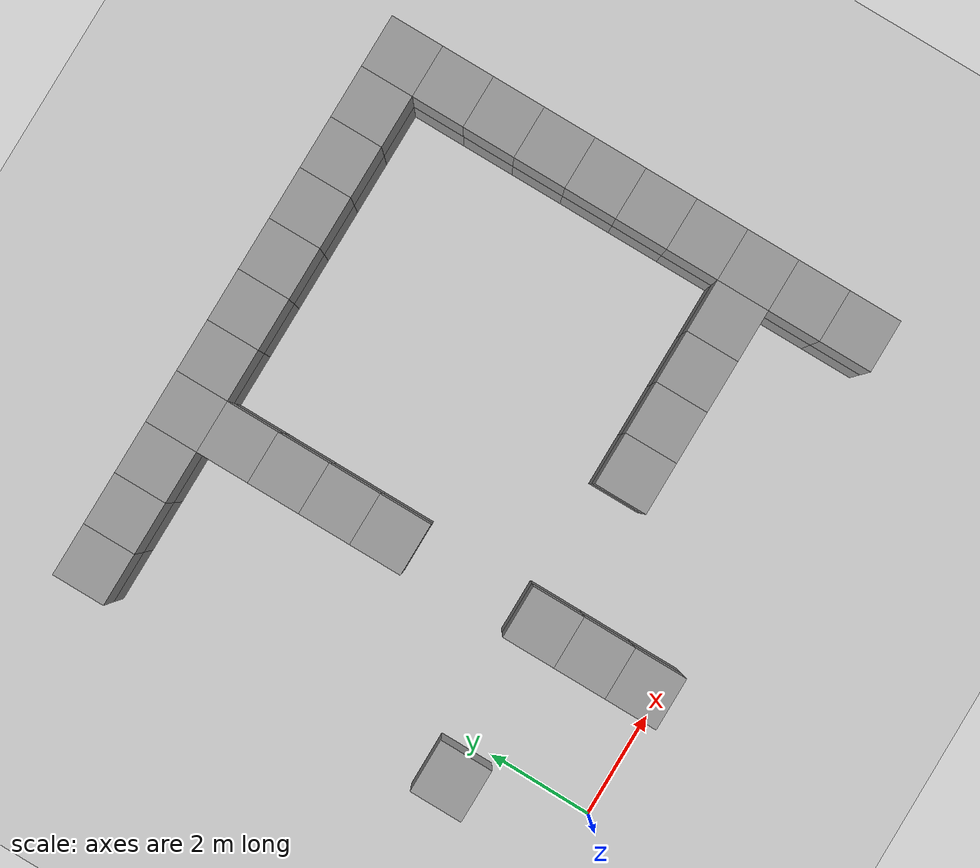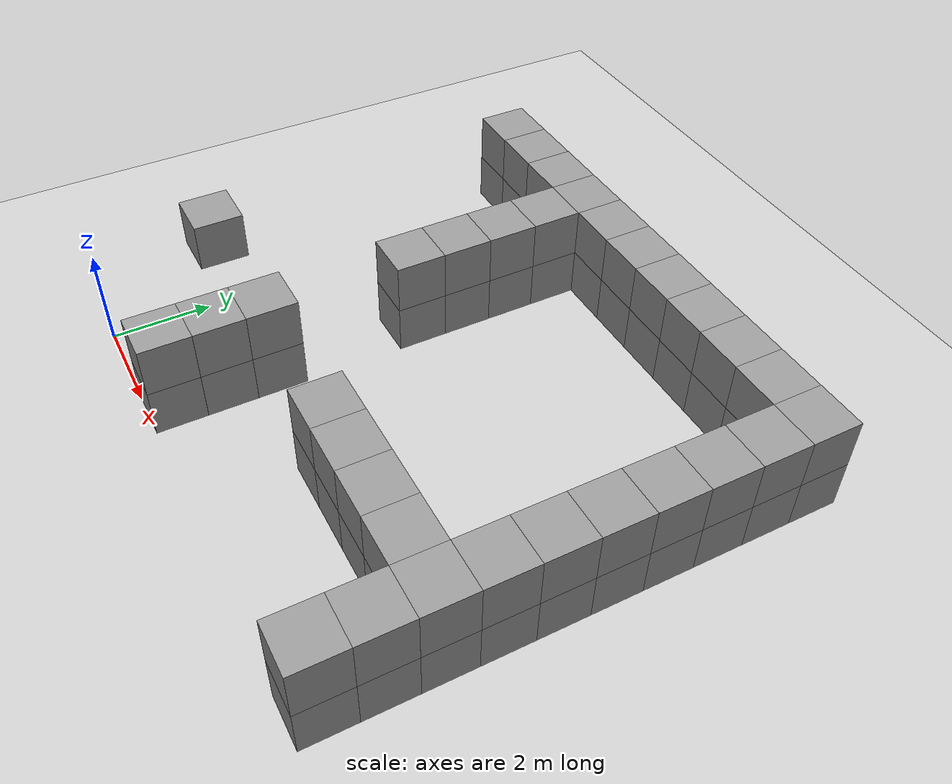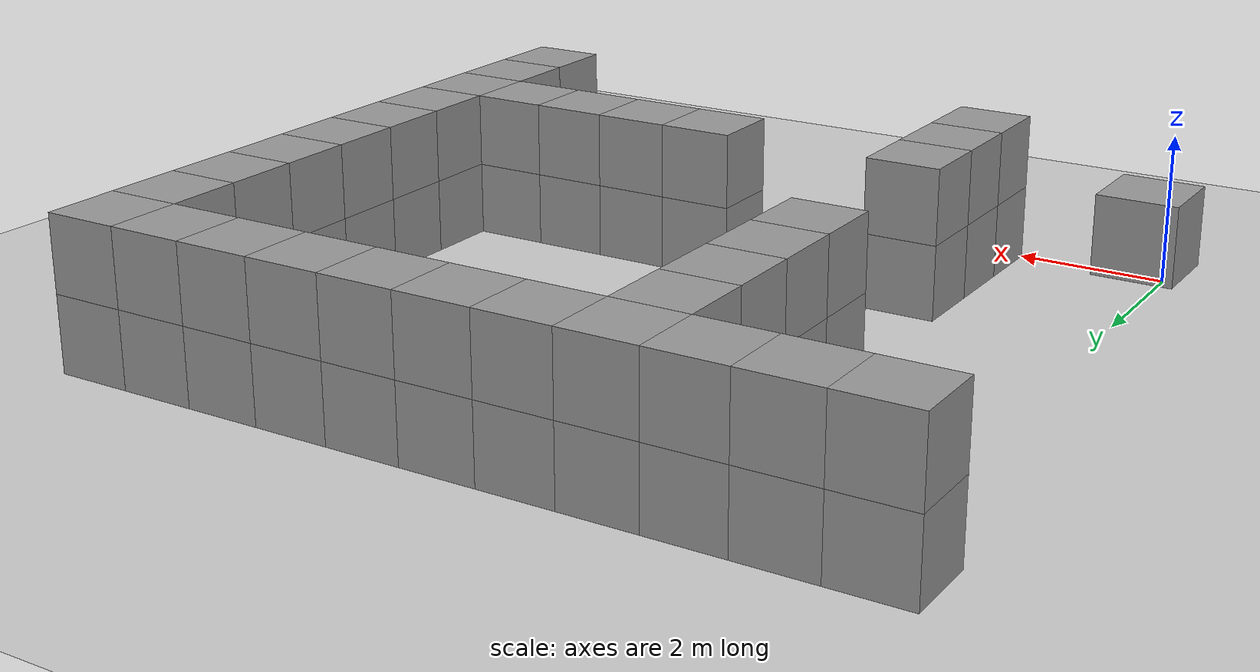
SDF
<sdf version="1.7">
 <world name="default">
  <model name="ground_plane">
   <static>1</static>
   <link name="link">
    <collision name="collision">
     <geometry><plane><normal>0 0 1</normal><size>100 100</size></plane></geometry>
     <surface>
      <contact><collide_bitmask>65535</collide_bitmask></contact>
      <friction><ode><mu>100</mu><mu2>50</mu2></ode></friction>
     </surface>
    </collision>
    <visual name="visual">
     <cast_shadows>0</cast_shadows>
     <geometry><plane><normal>0 0 1</normal><size>100 100</size></plane></geometry>
     <material>
      <script><uri>file://media/materials/scripts/gazebo.material</uri><name>Gazebo/Grey</name></script>
     </material>
    </visual>
   </link>
  </model>
  <model name="unit_box_clone_1">
   <pose>9.5 0.5 0.5 0 -0 0</pose>
   <link name="link">
    <inertial>
     <mass>1</mass>
     <inertia>
      <ixx>0.166667</ixx>
      <ixy>0</ixy>
      <ixz>0</ixz>
      <iyy>0.166667</iyy>
      <iyz>0</iyz>
      <izz>0.166667</izz>
     </inertia>
    </inertial>
    <collision name="collision"><geometry><box><size>1 1 1</size></box></geometry></collision>
    <visual name="visual">
     <geometry><box><size>1 1 1</size></box></geometry>
     <material>
      <script><name>Gazebo/Grey</name><uri>file://media/materials/scripts/gazebo.material</uri></script>
     </material>
    </visual>
   </link>
  </model>
  <model name="unit_box_clone_8">
   <pose>0.5 9.5 0.5 0 -0 0</pose>
   <link name="link">
    <inertial>
     <mass>1</mass>
     <inertia>
      <ixx>0.166667</ixx>
      <ixy>0</ixy>
      <ixz>0</ixz>
      <iyy>0.166667</iyy>
      <iyz>0</iyz>
      <izz>0.166667</izz>
     </inertia>
    </inertial>
    <collision name="collision"><geometry><box><size>1 1 1</size></box></geometry></collision>
    <visual name="visual">
     <geometry><box><size>1 1 1</size></box></geometry>
     <material>
      <script><name>Gazebo/Grey</name><uri>file://media/materials/scripts/gazebo.material</uri></script>
     </material>
    </visual>
   </link>
  </model>
  <model name="unit_box_clone_13">
   <pose>1.5 9.5 0.5 0 -0 0</pose>
   <link name="link">
    <inertial>
     <mass>1</mass>
     <inertia>
      <ixx>0.166667</ixx>
      <ixy>0</ixy>
      <ixz>0</ixz>
      <iyy>0.166667</iyy>
      <iyz>0</iyz>
      <izz>0.166667</izz>
     </inertia>
    </inertial>
    <collision name="collision"><geometry><box><size>1 1 1</size></box></geometry></collision>
    <visual name="visual">
     <geometry><box><size>1 1 1</size></box></geometry>
     <material>
      <script><name>Gazebo/Grey</name><uri>file://media/materials/scripts/gazebo.material</uri></script>
     </material>
    </visual>
   </link>
  </model>
  <model name="unit_box_clone_14">
   <pose>2.5 9.5 0.5 0 -0 0</pose>
   <link name="link">
    <inertial>
     <mass>1</mass>
     <inertia>
      <ixx>0.166667</ixx>
      <ixy>0</ixy>
      <ixz>0</ixz>
      <iyy>0.166667</iyy>
      <iyz>0</iyz>
      <izz>0.166667</izz>
     </inertia>
    </inertial>
    <collision name="collision"><geometry><box><size>1 1 1</size></box></geometry></collision>
    <visual name="visual">
     <geometry><box><size>1 1 1</size></box></geometry>
     <material>
      <script><name>Gazebo/Grey</name><uri>file://media/materials/scripts/gazebo.material</uri></script>
     </material>
    </visual>
   </link>
  </model>
  <model name="unit_box_clone_15">
   <pose>3.5 9.5 0.5 0 -0 0</pose>
   <link name="link">
    <inertial>
     <mass>1</mass>
     <inertia>
      <ixx>0.166667</ixx>
      <ixy>0</ixy>
      <ixz>0</ixz>
      <iyy>0.166667</iyy>
      <iyz>0</iyz>
      <izz>0.166667</izz>
     </inertia>
    </inertial>
    <collision name="collision"><geometry><box><size>1 1 1</size></box></geometry></collision>
    <visual name="visual">
     <geometry><box><size>1 1 1</size></box></geometry>
     <material>
      <script><name>Gazebo/Grey</name><uri>file://media/materials/scripts/gazebo.material</uri></script>
     </material>
    </visual>
   </link>
  </model>
  <model name="unit_box_clone_16">
   <pose>4.5 9.5 0.5 0 -0 0</pose>
   <link name="link">
    <inertial>
     <mass>1</mass>
     <inertia>
      <ixx>0.166667</ixx>
      <ixy>0</ixy>
      <ixz>0</ixz>
      <iyy>0.166667</iyy>
      <iyz>0</iyz>
      <izz>0.166667</izz>
     </inertia>
    </inertial>
    <collision name="collision"><geometry><box><size>1 1 1</size></box></geometry></collision>
    <visual name="visual">
     <geometry><box><size>1 1 1</size></box></geometry>
     <material>
      <script><name>Gazebo/Grey</name><uri>file://media/materials/scripts/gazebo.material</uri></script>
     </material>
    </visual>
   </link>
  </model>
  <model name="unit_box_clone_17">
   <pose>5.5 9.5 0.5 0 -0 0</pose>
   <link name="link">
    <inertial>
     <mass>1</mass>
     <inertia>
      <ixx>0.166667</ixx>
      <ixy>0</ixy>
      <ixz>0</ixz>
      <iyy>0.166667</iyy>
      <iyz>0</iyz>
      <izz>0.166667</izz>
     </inertia>
    </inertial>
    <collision name="collision"><geometry><box><size>1 1 1</size></box></geometry></collision>
    <visual name="visual">
     <geometry><box><size>1 1 1</size></box></geometry>
     <material>
      <script><name>Gazebo/Grey</name><uri>file://media/materials/scripts/gazebo.material</uri></script>
     </material>
    </visual>
   </link>
  </model>
  <model name="unit_box_clone_18">
   <pose>6.5 9.5 0.5 0 -0 0</pose>
   <link name="link">
    <inertial>
     <mass>1</mass>
     <inertia>
      <ixx>0.166667</ixx>
      <ixy>0</ixy>
      <ixz>0</ixz>
      <iyy>0.166667</iyy>
      <iyz>0</iyz>
      <izz>0.166667</izz>
     </inertia>
    </inertial>
    <collision name="collision"><geometry><box><size>1 1 1</size></box></geometry></collision>
    <visual name="visual">
     <geometry><box><size>1 1 1</size></box></geometry>
     <material>
      <script><name>Gazebo/Grey</name><uri>file://media/materials/scripts/gazebo.material</uri></script>
     </material>
    </visual>
   </link>
  </model>
  <model name="unit_box_clone_19">
   <pose>7.5 9.5 0.5 0 -0 0</pose>
   <link name="link">
    <inertial>
     <mass>1</mass>
     <inertia>
      <ixx>0.166667</ixx>
      <ixy>0</ixy>
      <ixz>0</ixz>
      <iyy>0.166667</iyy>
      <iyz>0</iyz>
      <izz>0.166667</izz>
     </inertia>
    </inertial>
    <collision name="collision"><geometry><box><size>1 1 1</size></box></geometry></collision>
    <visual name="visual">
     <geometry><box><size>1 1 1</size></box></geometry>
     <material>
      <script><name>Gazebo/Grey</name><uri>file://media/materials/scripts/gazebo.material</uri></script>
     </material>
    </visual>
   </link>
  </model>
  <model name="unit_box_clone_20">
   <pose>8.5 9.5 0.5 0 -0 0</pose>
   <link name="link">
    <inertial>
     <mass>1</mass>
     <inertia>
      <ixx>0.166667</ixx>
      <ixy>0</ixy>
      <ixz>0</ixz>
      <iyy>0.166667</iyy>
      <iyz>0</iyz>
      <izz>0.166667</izz>
     </inertia>
    </inertial>
    <collision name="collision"><geometry><box><size>1 1 1</size></box></geometry></collision>
    <visual name="visual">
     <geometry><box><size>1 1 1</size></box></geometry>
     <material>
      <script><name>Gazebo/Grey</name><uri>file://media/materials/scripts/gazebo.material</uri></script>
     </material>
    </visual>
   </link>
  </model>
  <model name="unit_box_clone_21">
   <pose>9.5 9.5 0.5 0 -0 0</pose>
   <link name="link">
    <inertial>
     <mass>1</mass>
     <inertia>
      <ixx>0.166667</ixx>
      <ixy>0</ixy>
      <ixz>0</ixz>
      <iyy>0.166667</iyy>
      <iyz>0</iyz>
      <izz>0.166667</izz>
     </inertia>
    </inertial>
    <collision name="collision"><geometry><box><size>1 1 1</size></box></geometry></collision>
    <visual name="visual">
     <geometry><box><size>1 1 1</size></box></geometry>
     <material>
      <script><name>Gazebo/Grey</name><uri>file://media/materials/scripts/gazebo.material</uri></script>
     </material>
    </visual>
   </link>
  </model>
  <model name="unit_box_clone_22">
   <pose>9.5 8.5 0.5 0 -0 0</pose>
   <link name="link">
    <inertial>
     <mass>1</mass>
     <inertia>
      <ixx>0.166667</ixx>
      <ixy>0</ixy>
      <ixz>0</ixz>
      <iyy>0.166667</iyy>
      <iyz>0</iyz>
      <izz>0.166667</izz>
     </inertia>
    </inertial>
    <collision name="collision"><geometry><box><size>1 1 1</size></box></geometry></collision>
    <visual name="visual">
     <geometry><box><size>1 1 1</size></box></geometry>
     <material>
      <script><name>Gazebo/Grey</name><uri>file://media/materials/scripts/gazebo.material</uri></script>
     </material>
    </visual>
   </link>
  </model>
  <model name="unit_box_clone_23">
   <pose>9.5 7.5 0.5 0 -0 0</pose>
   <link name="link">
    <inertial>
     <mass>1</mass>
     <inertia>
      <ixx>0.166667</ixx>
      <ixy>0</ixy>
      <ixz>0</ixz>
      <iyy>0.166667</iyy>
      <iyz>0</iyz>
      <izz>0.166667</izz>
     </inertia>
    </inertial>
    <collision name="collision"><geometry><box><size>1 1 1</size></box></geometry></collision>
    <visual name="visual">
     <geometry><box><size>1 1 1</size></box></geometry>
     <material>
      <script><name>Gazebo/Grey</name><uri>file://media/materials/scripts/gazebo.material</uri></script>
     </material>
    </visual>
   </link>
  </model>
  <model name="unit_box_clone_24">
   <pose>9.5 6.5 0.5 0 -0 0</pose>
   <link name="link">
    <inertial>
     <mass>1</mass>
     <inertia>
      <ixx>0.166667</ixx>
      <ixy>0</ixy>
      <ixz>0</ixz>
      <iyy>0.166667</iyy>
      <iyz>0</iyz>
      <izz>0.166667</izz>
     </inertia>
    </inertial>
    <collision name="collision"><geometry><box><size>1 1 1</size></box></geometry></collision>
    <visual name="visual">
     <geometry><box><size>1 1 1</size></box></geometry>
     <material>
      <script><name>Gazebo/Grey</name><uri>file://media/materials/scripts/gazebo.material</uri></script>
     </material>
    </visual>
   </link>
  </model>
  <model name="unit_box_clone_25">
   <pose>9.5 5.5 0.5 0 -0 0</pose>
   <link name="link">
    <inertial>
     <mass>1</mass>
     <inertia>
      <ixx>0.166667</ixx>
      <ixy>0</ixy>
      <ixz>0</ixz>
      <iyy>0.166667</iyy>
      <iyz>0</iyz>
      <izz>0.166667</izz>
     </inertia>
    </inertial>
    <collision name="collision"><geometry><box><size>1 1 1</size></box></geometry></collision>
    <visual name="visual">
     <geometry><box><size>1 1 1</size></box></geometry>
     <material>
      <script><name>Gazebo/Grey</name><uri>file://media/materials/scripts/gazebo.material</uri></script>
     </material>
    </visual>
   </link>
  </model>
  <model name="unit_box_clone_26">
   <pose>9.5 4.5 0.5 0 -0 0</pose>
   <link name="link">
    <inertial>
     <mass>1</mass>
     <inertia>
      <ixx>0.166667</ixx>
      <ixy>0</ixy>
      <ixz>0</ixz>
      <iyy>0.166667</iyy>
      <iyz>0</iyz>
      <izz>0.166667</izz>
     </inertia>
    </inertial>
    <collision name="collision"><geometry><box><size>1 1 1</size></box></geometry></collision>
    <visual name="visual">
     <geometry><box><size>1 1 1</size></box></geometry>
     <material>
      <script><name>Gazebo/Grey</name><uri>file://media/materials/scripts/gazebo.material</uri></script>
     </material>
    </visual>
   </link>
  </model>
  <model name="unit_box_clone_27">
   <pose>9.5 3.5 0.5 0 -0 0</pose>
   <link name="link">
    <inertial>
     <mass>1</mass>
     <inertia>
      <ixx>0.166667</ixx>
      <ixy>0</ixy>
      <ixz>0</ixz>
      <iyy>0.166667</iyy>
      <iyz>0</iyz>
      <izz>0.166667</izz>
     </inertia>
    </inertial>
    <collision name="collision"><geometry><box><size>1 1 1</size></box></geometry></collision>
    <visual name="visual">
     <geometry><box><size>1 1 1</size></box></geometry>
     <material>
      <script><name>Gazebo/Grey</name><uri>file://media/materials/scripts/gazebo.material</uri></script>
     </material>
    </visual>
   </link>
  </model>
  <model name="unit_box_clone_28">
   <pose>9.5 2.5 0.5 0 -0 0</pose>
   <link name="link">
    <inertial>
     <mass>1</mass>
     <inertia>
      <ixx>0.166667</ixx>
      <ixy>0</ixy>
      <ixz>0</ixz>
      <iyy>0.166667</iyy>
      <iyz>0</iyz>
      <izz>0.166667</izz>
     </inertia>
    </inertial>
    <collision name="collision"><geometry><box><size>1 1 1</size></box></geometry></collision>
    <visual name="visual">
     <geometry><box><size>1 1 1</size></box></geometry>
     <material>
      <script><name>Gazebo/Grey</name><uri>file://media/materials/scripts/gazebo.material</uri></script>
     </material>
    </visual>
   </link>
  </model>
  <model name="unit_box_clone_29">
   <pose>9.5 1.5 0.5 0 -0 0</pose>
   <link name="link">
    <inertial>
     <mass>1</mass>
     <inertia>
      <ixx>0.166667</ixx>
      <ixy>0</ixy>
      <ixz>0</ixz>
      <iyy>0.166667</iyy>
      <iyz>0</iyz>
      <izz>0.166667</izz>
     </inertia>
    </inertial>
    <collision name="collision"><geometry><box><size>1 1 1</size></box></geometry></collision>
    <visual name="visual">
     <geometry><box><size>1 1 1</size></box></geometry>
     <material>
      <script><name>Gazebo/Grey</name><uri>file://media/materials/scripts/gazebo.material</uri></script>
     </material>
    </visual>
   </link>
  </model>
  <model name="unit_box_clone_0_clone_clone_3">
   <pose>9.5 0.5 1.5 0 -0 0</pose>
   <link name="link">
    <inertial>
     <mass>1</mass>
     <inertia>
      <ixx>0.166667</ixx>
      <ixy>0</ixy>
      <ixz>0</ixz>
      <iyy>0.166667</iyy>
      <iyz>0</iyz>
      <izz>0.166667</izz>
     </inertia>
    </inertial>
    <collision name="collision"><geometry><box><size>1 1 1</size></box></geometry></collision>
    <visual name="visual">
     <geometry><box><size>1 1 1</size></box></geometry>
     <material>
      <script><name>Gazebo/Grey</name><uri>file://media/materials/scripts/gazebo.material</uri></script>
     </material>
    </visual>
   </link>
  </model>
  <model name="unit_box_clone_0_clone_clone_4">
   <pose>9.5 1.5 1.5 0 -0 0</pose>
   <link name="link">
    <inertial>
     <mass>1</mass>
     <inertia>
      <ixx>0.166667</ixx>
      <ixy>0</ixy>
      <ixz>0</ixz>
      <iyy>0.166667</iyy>
      <iyz>0</iyz>
      <izz>0.166667</izz>
     </inertia>
    </inertial>
    <collision name="collision"><geometry><box><size>1 1 1</size></box></geometry></collision>
    <visual name="visual">
     <geometry><box><size>1 1 1</size></box></geometry>
     <material>
      <script><name>Gazebo/Grey</name><uri>file://media/materials/scripts/gazebo.material</uri></script>
     </material>
    </visual>
   </link>
  </model>
  <model name="unit_box_clone_0_clone_clone_5">
   <pose>9.5 2.5 1.5 0 -0 0</pose>
   <link name="link">
    <inertial>
     <mass>1</mass>
     <inertia>
      <ixx>0.166667</ixx>
      <ixy>0</ixy>
      <ixz>0</ixz>
      <iyy>0.166667</iyy>
      <iyz>0</iyz>
      <izz>0.166667</izz>
     </inertia>
    </inertial>
    <collision name="collision"><geometry><box><size>1 1 1</size></box></geometry></collision>
    <visual name="visual">
     <geometry><box><size>1 1 1</size></box></geometry>
     <material>
      <script><name>Gazebo/Grey</name><uri>file://media/materials/scripts/gazebo.material</uri></script>
     </material>
    </visual>
   </link>
  </model>
  <model name="unit_box_clone_0_clone_clone_6">
   <pose>9.5 3.5 1.5 0 -0 0</pose>
   <link name="link">
    <inertial>
     <mass>1</mass>
     <inertia>
      <ixx>0.166667</ixx>
      <ixy>0</ixy>
      <ixz>0</ixz>
      <iyy>0.166667</iyy>
      <iyz>0</iyz>
      <izz>0.166667</izz>
     </inertia>
    </inertial>
    <collision name="collision"><geometry><box><size>1 1 1</size></box></geometry></collision>
    <visual name="visual">
     <geometry><box><size>1 1 1</size></box></geometry>
     <material>
      <script><name>Gazebo/Grey</name><uri>file://media/materials/scripts/gazebo.material</uri></script>
     </material>
    </visual>
   </link>
  </model>
  <model name="unit_box_clone_0_clone_clone_7">
   <pose>9.5 4.5 1.5 0 -0 0</pose>
   <link name="link">
    <inertial>
     <mass>1</mass>
     <inertia>
      <ixx>0.166667</ixx>
      <ixy>0</ixy>
      <ixz>0</ixz>
      <iyy>0.166667</iyy>
      <iyz>0</iyz>
      <izz>0.166667</izz>
     </inertia>
    </inertial>
    <collision name="collision"><geometry><box><size>1 1 1</size></box></geometry></collision>
    <visual name="visual">
     <geometry><box><size>1 1 1</size></box></geometry>
     <material>
      <script><name>Gazebo/Grey</name><uri>file://media/materials/scripts/gazebo.material</uri></script>
     </material>
    </visual>
   </link>
  </model>
  <model name="unit_box_clone_0_clone_clone_8">
   <pose>9.5 5.5 1.5 0 -0 0</pose>
   <link name="link">
    <inertial>
     <mass>1</mass>
     <inertia>
      <ixx>0.166667</ixx>
      <ixy>0</ixy>
      <ixz>0</ixz>
      <iyy>0.166667</iyy>
      <iyz>0</iyz>
      <izz>0.166667</izz>
     </inertia>
    </inertial>
    <collision name="collision"><geometry><box><size>1 1 1</size></box></geometry></collision>
    <visual name="visual">
     <geometry><box><size>1 1 1</size></box></geometry>
     <material>
      <script><name>Gazebo/Grey</name><uri>file://media/materials/scripts/gazebo.material</uri></script>
     </material>
    </visual>
   </link>
  </model>
  <model name="unit_box_clone_0_clone_clone_9">
   <pose>9.5 6.5 1.5 0 -0 0</pose>
   <link name="link">
    <inertial>
     <mass>1</mass>
     <inertia>
      <ixx>0.166667</ixx>
      <ixy>0</ixy>
      <ixz>0</ixz>
      <iyy>0.166667</iyy>
      <iyz>0</iyz>
      <izz>0.166667</izz>
     </inertia>
    </inertial>
    <collision name="collision"><geometry><box><size>1 1 1</size></box></geometry></collision>
    <visual name="visual">
     <geometry><box><size>1 1 1</size></box></geometry>
     <material>
      <script><name>Gazebo/Grey</name><uri>file://media/materials/scripts/gazebo.material</uri></script>
     </material>
    </visual>
   </link>
  </model>
  <model name="unit_box_clone_0_clone_clone_10">
   <pose>9.5 7.5 1.5 0 -0 0</pose>
   <link name="link">
    <inertial>
     <mass>1</mass>
     <inertia>
      <ixx>0.166667</ixx>
      <ixy>0</ixy>
      <ixz>0</ixz>
      <iyy>0.166667</iyy>
      <iyz>0</iyz>
      <izz>0.166667</izz>
     </inertia>
    </inertial>
    <collision name="collision"><geometry><box><size>1 1 1</size></box></geometry></collision>
    <visual name="visual">
     <geometry><box><size>1 1 1</size></box></geometry>
     <material>
      <script><name>Gazebo/Grey</name><uri>file://media/materials/scripts/gazebo.material</uri></script>
     </material>
    </visual>
   </link>
  </model>
  <model name="unit_box_clone_0_clone_clone_11">
   <pose>9.5 8.5 1.5 0 -0 0</pose>
   <link name="link">
    <inertial>
     <mass>1</mass>
     <inertia>
      <ixx>0.166667</ixx>
      <ixy>0</ixy>
      <ixz>0</ixz>
      <iyy>0.166667</iyy>
      <iyz>0</iyz>
      <izz>0.166667</izz>
     </inertia>
    </inertial>
    <collision name="collision"><geometry><box><size>1 1 1</size></box></geometry></collision>
    <visual name="visual">
     <geometry><box><size>1 1 1</size></box></geometry>
     <material>
      <script><name>Gazebo/Grey</name><uri>file://media/materials/scripts/gazebo.material</uri></script>
     </material>
    </visual>
   </link>
  </model>
  <model name="unit_box_clone_0_clone_clone_12">
   <pose>9.5 9.5 1.5 0 -0 0</pose>
   <link name="link">
    <inertial>
     <mass>1</mass>
     <inertia>
      <ixx>0.166667</ixx>
      <ixy>0</ixy>
      <ixz>0</ixz>
      <iyy>0.166667</iyy>
      <iyz>0</iyz>
      <izz>0.166667</izz>
     </inertia>
    </inertial>
    <collision name="collision"><geometry><box><size>1 1 1</size></box></geometry></collision>
    <visual name="visual">
     <geometry><box><size>1 1 1</size></box></geometry>
     <material>
      <script><name>Gazebo/Grey</name><uri>file://media/materials/scripts/gazebo.material</uri></script>
     </material>
    </visual>
   </link>
  </model>
  <model name="unit_box_clone_0_clone_clone_13">
   <pose>8.5 9.5 1.5 0 -0 0</pose>
   <link name="link">
    <inertial>
     <mass>1</mass>
     <inertia>
      <ixx>0.166667</ixx>
      <ixy>0</ixy>
      <ixz>0</ixz>
      <iyy>0.166667</iyy>
      <iyz>0</iyz>
      <izz>0.166667</izz>
     </inertia>
    </inertial>
    <collision name="collision"><geometry><box><size>1 1 1</size></box></geometry></collision>
    <visual name="visual">
     <geometry><box><size>1 1 1</size></box></geometry>
     <material>
      <script><name>Gazebo/Grey</name><uri>file://media/materials/scripts/gazebo.material</uri></script>
     </material>
    </visual>
   </link>
  </model>
  <model name="unit_box_clone_0_clone_clone_14">
   <pose>7.5 9.5 1.5 0 -0 0</pose>
   <link name="link">
    <inertial>
     <mass>1</mass>
     <inertia>
      <ixx>0.166667</ixx>
      <ixy>0</ixy>
      <ixz>0</ixz>
      <iyy>0.166667</iyy>
      <iyz>0</iyz>
      <izz>0.166667</izz>
     </inertia>
    </inertial>
    <collision name="collision"><geometry><box><size>1 1 1</size></box></geometry></collision>
    <visual name="visual">
     <geometry><box><size>1 1 1</size></box></geometry>
     <material>
      <script><name>Gazebo/Grey</name><uri>file://media/materials/scripts/gazebo.material</uri></script>
     </material>
    </visual>
   </link>
  </model>
  <model name="unit_box_clone_0_clone_clone_15">
   <pose>6.5 9.5 1.5 0 -0 0</pose>
   <link name="link">
    <inertial>
     <mass>1</mass>
     <inertia>
      <ixx>0.166667</ixx>
      <ixy>0</ixy>
      <ixz>0</ixz>
      <iyy>0.166667</iyy>
      <iyz>0</iyz>
      <izz>0.166667</izz>
     </inertia>
    </inertial>
    <collision name="collision"><geometry><box><size>1 1 1</size></box></geometry></collision>
    <visual name="visual">
     <geometry><box><size>1 1 1</size></box></geometry>
     <material>
      <script><name>Gazebo/Grey</name><uri>file://media/materials/scripts/gazebo.material</uri></script>
     </material>
    </visual>
   </link>
  </model>
  <model name="unit_box_clone_0_clone_clone_16">
   <pose>5.5 9.5 1.5 0 -0 0</pose>
   <link name="link">
    <inertial>
     <mass>1</mass>
     <inertia>
      <ixx>0.166667</ixx>
      <ixy>0</ixy>
      <ixz>0</ixz>
      <iyy>0.166667</iyy>
      <iyz>0</iyz>
      <izz>0.166667</izz>
     </inertia>
    </inertial>
    <collision name="collision"><geometry><box><size>1 1 1</size></box></geometry></collision>
    <visual name="visual">
     <geometry><box><size>1 1 1</size></box></geometry>
     <material>
      <script><name>Gazebo/Grey</name><uri>file://media/materials/scripts/gazebo.material</uri></script>
     </material>
    </visual>
   </link>
  </model>
  <model name="unit_box_clone_0_clone_clone_17">
   <pose>4.5 9.5 1.5 0 -0 0</pose>
   <link name="link">
    <inertial>
     <mass>1</mass>
     <inertia>
      <ixx>0.166667</ixx>
      <ixy>0</ixy>
      <ixz>0</ixz>
      <iyy>0.166667</iyy>
      <iyz>0</iyz>
      <izz>0.166667</izz>
     </inertia>
    </inertial>
    <collision name="collision"><geometry><box><size>1 1 1</size></box></geometry></collision>
    <visual name="visual">
     <geometry><box><size>1 1 1</size></box></geometry>
     <material>
      <script><name>Gazebo/Grey</name><uri>file://media/materials/scripts/gazebo.material</uri></script>
     </material>
    </visual>
   </link>
  </model>
  <model name="unit_box_clone_0_clone_clone_18">
   <pose>3.5 9.5 1.5 0 -0 0</pose>
   <link name="link">
    <inertial>
     <mass>1</mass>
     <inertia>
      <ixx>0.166667</ixx>
      <ixy>0</ixy>
      <ixz>0</ixz>
      <iyy>0.166667</iyy>
      <iyz>0</iyz>
      <izz>0.166667</izz>
     </inertia>
    </inertial>
    <collision name="collision"><geometry><box><size>1 1 1</size></box></geometry></collision>
    <visual name="visual">
     <geometry><box><size>1 1 1</size></box></geometry>
     <material>
      <script><name>Gazebo/Grey</name><uri>file://media/materials/scripts/gazebo.material</uri></script>
     </material>
    </visual>
   </link>
  </model>
  <model name="unit_box_clone_0_clone_clone_19">
   <pose>2.5 9.5 1.5 0 -0 0</pose>
   <link name="link">
    <inertial>
     <mass>1</mass>
     <inertia>
      <ixx>0.166667</ixx>
      <ixy>0</ixy>
      <ixz>0</ixz>
      <iyy>0.166667</iyy>
      <iyz>0</iyz>
      <izz>0.166667</izz>
     </inertia>
    </inertial>
    <collision name="collision"><geometry><box><size>1 1 1</size></box></geometry></collision>
    <visual name="visual">
     <geometry><box><size>1 1 1</size></box></geometry>
     <material>
      <script><name>Gazebo/Grey</name><uri>file://media/materials/scripts/gazebo.material</uri></script>
     </material>
    </visual>
   </link>
  </model>
  <model name="unit_box_clone_0_clone_clone_20">
   <pose>1.5 9.5 1.5 0 -0 0</pose>
   <link name="link">
    <inertial>
     <mass>1</mass>
     <inertia>
      <ixx>0.166667</ixx>
      <ixy>0</ixy>
      <ixz>0</ixz>
      <iyy>0.166667</iyy>
      <iyz>0</iyz>
      <izz>0.166667</izz>
     </inertia>
    </inertial>
    <collision name="collision"><geometry><box><size>1 1 1</size></box></geometry></collision>
    <visual name="visual">
     <geometry><box><size>1 1 1</size></box></geometry>
     <material>
      <script><name>Gazebo/Grey</name><uri>file://media/materials/scripts/gazebo.material</uri></script>
     </material>
    </visual>
   </link>
  </model>
  <model name="unit_box_clone_0_clone_clone_21">
   <pose>0.5 9.5 1.5 0 -0 0</pose>
   <link name="link">
    <inertial>
     <mass>1</mass>
     <inertia>
      <ixx>0.166667</ixx>
      <ixy>0</ixy>
      <ixz>0</ixz>
      <iyy>0.166667</iyy>
      <iyz>0</iyz>
      <izz>0.166667</izz>
     </inertia>
    </inertial>
    <collision name="collision"><geometry><box><size>1 1 1</size></box></geometry></collision>
    <visual name="visual">
     <geometry><box><size>1 1 1</size></box></geometry>
     <material>
      <script><name>Gazebo/Grey</name><uri>file://media/materials/scripts/gazebo.material</uri></script>
     </material>
    </visual>
   </link>
  </model>
  <model name="unit_box_clone_7_clone_4">
   <pose>-0.5 9.5 0.5 0 -0 0</pose>
   <link name="link">
    <inertial>
     <mass>1</mass>
     <inertia>
      <ixx>0.166667</ixx>
      <ixy>0</ixy>
      <ixz>0</ixz>
      <iyy>0.166667</iyy>
      <iyz>0</iyz>
      <izz>0.166667</izz>
     </inertia>
    </inertial>
    <collision name="collision"><geometry><box><size>1 1 1</size></box></geometry></collision>
    <visual name="visual">
     <geometry><box><size>1 1 1</size></box></geometry>
     <material>
      <script><name>Gazebo/Grey</name><uri>file://media/materials/scripts/gazebo.material</uri></script>
     </material>
    </visual>
   </link>
  </model>
  <model name="unit_box_clone_0_clone_clone_26_clone_23">
   <pose>-0.5 9.5 1.5 0 -0 0</pose>
   <link name="link">
    <inertial>
     <mass>1</mass>
     <inertia>
      <ixx>0.166667</ixx>
      <ixy>0</ixy>
      <ixz>0</ixz>
      <iyy>0.166667</iyy>
      <iyz>0</iyz>
      <izz>0.166667</izz>
     </inertia>
    </inertial>
    <collision name="collision"><geometry><box><size>1 1 1</size></box></geometry></collision>
    <visual name="visual">
     <geometry><box><size>1 1 1</size></box></geometry>
     <material>
      <script><name>Gazebo/Grey</name><uri>file://media/materials/scripts/gazebo.material</uri></script>
     </material>
    </visual>
   </link>
  </model>
  <model name="unit_box_clone_27_clone">
   <pose>8.5 2.5 0.5 0 -0 0</pose>
   <link name="link">
    <inertial>
     <mass>1</mass>
     <inertia>
      <ixx>0.166667</ixx>
      <ixy>0</ixy>
      <ixz>0</ixz>
      <iyy>0.166667</iyy>
      <iyz>0</iyz>
      <izz>0.166667</izz>
     </inertia>
    </inertial>
    <collision name="collision"><geometry><box><size>1 1 1</size></box></geometry></collision>
    <visual name="visual">
     <geometry><box><size>1 1 1</size></box></geometry>
     <material>
      <script><name>Gazebo/Grey</name><uri>file://media/materials/scripts/gazebo.material</uri></script>
     </material>
    </visual>
   </link>
  </model>
  <model name="unit_box_clone_27_clone_clone">
   <pose>7.5 2.5 0.5 0 -0 0</pose>
   <link name="link">
    <inertial>
     <mass>1</mass>
     <inertia>
      <ixx>0.166667</ixx>
      <ixy>0</ixy>
      <ixz>0</ixz>
      <iyy>0.166667</iyy>
      <iyz>0</iyz>
      <izz>0.166667</izz>
     </inertia>
    </inertial>
    <collision name="collision"><geometry><box><size>1 1 1</size></box></geometry></collision>
    <visual name="visual">
     <geometry><box><size>1 1 1</size></box></geometry>
     <material>
      <script><name>Gazebo/Grey</name><uri>file://media/materials/scripts/gazebo.material</uri></script>
     </material>
    </visual>
   </link>
  </model>
  <model name="unit_box_clone_27_clone_clone_clone">
   <pose>6.5 2.5 0.5 0 -0 0</pose>
   <link name="link">
    <inertial>
     <mass>1</mass>
     <inertia>
      <ixx>0.166667</ixx>
      <ixy>0</ixy>
      <ixz>0</ixz>
      <iyy>0.166667</iyy>
      <iyz>0</iyz>
      <izz>0.166667</izz>
     </inertia>
    </inertial>
    <collision name="collision"><geometry><box><size>1 1 1</size></box></geometry></collision>
    <visual name="visual">
     <geometry><box><size>1 1 1</size></box></geometry>
     <material>
      <script><name>Gazebo/Grey</name><uri>file://media/materials/scripts/gazebo.material</uri></script>
     </material>
    </visual>
   </link>
  </model>
  <model name="unit_box_clone_27_clone_clone_clone_clone">
   <pose>5.5 2.5 0.5 0 -0 0</pose>
   <link name="link">
    <inertial>
     <mass>1</mass>
     <inertia>
      <ixx>0.166667</ixx>
      <ixy>0</ixy>
      <ixz>0</ixz>
      <iyy>0.166667</iyy>
      <iyz>0</iyz>
      <izz>0.166667</izz>
     </inertia>
    </inertial>
    <collision name="collision"><geometry><box><size>1 1 1</size></box></geometry></collision>
    <visual name="visual">
     <geometry><box><size>1 1 1</size></box></geometry>
     <material>
      <script><name>Gazebo/Grey</name><uri>file://media/materials/scripts/gazebo.material</uri></script>
     </material>
    </visual>
   </link>
  </model>
  <model name="unit_box_clone_27_clone_clone_clone_clone_clone">
   <pose>2.5 8.5 0.5 0 -0 0</pose>
   <link name="link">
    <inertial>
     <mass>1</mass>
     <inertia>
      <ixx>0.166667</ixx>
      <ixy>0</ixy>
      <ixz>0</ixz>
      <iyy>0.166667</iyy>
      <iyz>0</iyz>
      <izz>0.166667</izz>
     </inertia>
    </inertial>
    <collision name="collision"><geometry><box><size>1 1 1</size></box></geometry></collision>
    <visual name="visual">
     <geometry><box><size>1 1 1</size></box></geometry>
     <material>
      <script><name>Gazebo/Grey</name><uri>file://media/materials/scripts/gazebo.material</uri></script>
     </material>
    </visual>
   </link>
  </model>
  <model name="unit_box_clone_27_clone_clone_clone_clone_clone_0">
   <pose>2.5 7.5 0.5 0 -0 0</pose>
   <link name="link">
    <inertial>
     <mass>1</mass>
     <inertia>
      <ixx>0.166667</ixx>
      <ixy>0</ixy>
      <ixz>0</ixz>
      <iyy>0.166667</iyy>
      <iyz>0</iyz>
      <izz>0.166667</izz>
     </inertia>
    </inertial>
    <collision name="collision"><geometry><box><size>1 1 1</size></box></geometry></collision>
    <visual name="visual">
     <geometry><box><size>1 1 1</size></box></geometry>
     <material>
      <script><name>Gazebo/Grey</name><uri>file://media/materials/scripts/gazebo.material</uri></script>
     </material>
    </visual>
   </link>
  </model>
  <model name="unit_box_clone_27_clone_clone_clone_clone_clone_1">
   <pose>2.5 6.5 0.5 0 -0 0</pose>
   <link name="link">
    <inertial>
     <mass>1</mass>
     <inertia>
      <ixx>0.166667</ixx>
      <ixy>0</ixy>
      <ixz>0</ixz>
      <iyy>0.166667</iyy>
      <iyz>0</iyz>
      <izz>0.166667</izz>
     </inertia>
    </inertial>
    <collision name="collision"><geometry><box><size>1 1 1</size></box></geometry></collision>
    <visual name="visual">
     <geometry><box><size>1 1 1</size></box></geometry>
     <material>
      <script><name>Gazebo/Grey</name><uri>file://media/materials/scripts/gazebo.material</uri></script>
     </material>
    </visual>
   </link>
  </model>
  <model name="unit_box_clone_27_clone_clone_clone_clone_clone_2">
   <pose>2.5 5.5 0.5 0 -0 0</pose>
   <link name="link">
    <inertial>
     <mass>1</mass>
     <inertia>
      <ixx>0.166667</ixx>
      <ixy>0</ixy>
      <ixz>0</ixz>
      <iyy>0.166667</iyy>
      <iyz>0</iyz>
      <izz>0.166667</izz>
     </inertia>
    </inertial>
    <collision name="collision"><geometry><box><size>1 1 1</size></box></geometry></collision>
    <visual name="visual">
     <geometry><box><size>1 1 1</size></box></geometry>
     <material>
      <script><name>Gazebo/Grey</name><uri>file://media/materials/scripts/gazebo.material</uri></script>
     </material>
    </visual>
   </link>
  </model>
  <model name="unit_box_clone_0_clone_clone_26_clone_2_clone_1_clone_0_clone_2">
   <pose>-0.5 2.5 1.5 0 -0 0</pose>
   <link name="link">
    <inertial>
     <mass>1</mass>
     <inertia>
      <ixx>0.166667</ixx>
      <ixy>0</ixy>
      <ixz>0</ixz>
      <iyy>0.166667</iyy>
      <iyz>0</iyz>
      <izz>0.166667</izz>
     </inertia>
    </inertial>
    <collision name="collision"><geometry><box><size>1 1 1</size></box></geometry></collision>
    <visual name="visual">
     <geometry><box><size>1 1 1</size></box></geometry>
     <material>
      <script><name>Gazebo/Grey</name><uri>file://media/materials/scripts/gazebo.material</uri></script>
     </material>
    </visual>
   </link>
  </model>
  <model name="unit_box_clone_0_clone_clone_26_clone_2_clone_1_clone_0_clone_2_clone">
   <pose>5.5 2.5 1.5 0 -0 0</pose>
   <link name="link">
    <inertial>
     <mass>1</mass>
     <inertia>
      <ixx>0.166667</ixx>
      <ixy>0</ixy>
      <ixz>0</ixz>
      <iyy>0.166667</iyy>
      <iyz>0</iyz>
      <izz>0.166667</izz>
     </inertia>
    </inertial>
    <collision name="collision"><geometry><box><size>1 1 1</size></box></geometry></collision>
    <visual name="visual">
     <geometry><box><size>1 1 1</size></box></geometry>
     <material>
      <script><name>Gazebo/Grey</name><uri>file://media/materials/scripts/gazebo.material</uri></script>
     </material>
    </visual>
   </link>
  </model>
  <model name="unit_box_clone_0_clone_clone_26_clone_2_clone_1_clone_0_clone_2_clone_0">
   <pose>6.5 2.5 1.5 0 -0 0</pose>
   <link name="link">
    <inertial>
     <mass>1</mass>
     <inertia>
      <ixx>0.166667</ixx>
      <ixy>0</ixy>
      <ixz>0</ixz>
      <iyy>0.166667</iyy>
      <iyz>0</iyz>
      <izz>0.166667</izz>
     </inertia>
    </inertial>
    <collision name="collision"><geometry><box><size>1 1 1</size></box></geometry></collision>
    <visual name="visual">
     <geometry><box><size>1 1 1</size></box></geometry>
     <material>
      <script><name>Gazebo/Grey</name><uri>file://media/materials/scripts/gazebo.material</uri></script>
     </material>
    </visual>
   </link>
  </model>
  <model name="unit_box_clone_0_clone_clone_26_clone_2_clone_1_clone_0_clone_2_clone_1">
   <pose>7.5 2.5 1.5 0 -0 0</pose>
   <link name="link">
    <inertial>
     <mass>1</mass>
     <inertia>
      <ixx>0.166667</ixx>
      <ixy>0</ixy>
      <ixz>0</ixz>
      <iyy>0.166667</iyy>
      <iyz>0</iyz>
      <izz>0.166667</izz>
     </inertia>
    </inertial>
    <collision name="collision"><geometry><box><size>1 1 1</size></box></geometry></collision>
    <visual name="visual">
     <geometry><box><size>1 1 1</size></box></geometry>
     <material>
      <script><name>Gazebo/Grey</name><uri>file://media/materials/scripts/gazebo.material</uri></script>
     </material>
    </visual>
   </link>
  </model>
  <model name="unit_box_clone_0_clone_clone_26_clone_2_clone_1_clone_0_clone_2_clone_2">
   <pose>8.5 2.5 1.5 0 -0 0</pose>
   <link name="link">
    <inertial>
     <mass>1</mass>
     <inertia>
      <ixx>0.166667</ixx>
      <ixy>0</ixy>
      <ixz>0</ixz>
      <iyy>0.166667</iyy>
      <iyz>0</iyz>
      <izz>0.166667</izz>
     </inertia>
    </inertial>
    <collision name="collision"><geometry><box><size>1 1 1</size></box></geometry></collision>
    <visual name="visual">
     <geometry><box><size>1 1 1</size></box></geometry>
     <material>
      <script><name>Gazebo/Grey</name><uri>file://media/materials/scripts/gazebo.material</uri></script>
     </material>
    </visual>
   </link>
  </model>
  <model name="unit_box_clone_0_clone_clone_26_clone_2_clone_1_clone_0_clone_14">
   <pose>2.5 8.5 1.5 0 -0 0</pose>
   <link name="link">
    <inertial>
     <mass>1</mass>
     <inertia>
      <ixx>0.166667</ixx>
      <ixy>0</ixy>
      <ixz>0</ixz>
      <iyy>0.166667</iyy>
      <iyz>0</iyz>
      <izz>0.166667</izz>
     </inertia>
    </inertial>
    <collision name="collision"><geometry><box><size>1 1 1</size></box></geometry></collision>
    <visual name="visual">
     <geometry><box><size>1 1 1</size></box></geometry>
     <material>
      <script><name>Gazebo/Grey</name><uri>file://media/materials/scripts/gazebo.material</uri></script>
     </material>
    </visual>
   </link>
  </model>
  <model name="unit_box_clone_0_clone_clone_26_clone_2_clone_1_clone_0_clone_15">
   <pose>2.5 7.5 1.5 0 -0 0</pose>
   <link name="link">
    <inertial>
     <mass>1</mass>
     <inertia>
      <ixx>0.166667</ixx>
      <ixy>0</ixy>
      <ixz>0</ixz>
      <iyy>0.166667</iyy>
      <iyz>0</iyz>
      <izz>0.166667</izz>
     </inertia>
    </inertial>
    <collision name="collision"><geometry><box><size>1 1 1</size></box></geometry></collision>
    <visual name="visual">
     <geometry><box><size>1 1 1</size></box></geometry>
     <material>
      <script><name>Gazebo/Grey</name><uri>file://media/materials/scripts/gazebo.material</uri></script>
     </material>
    </visual>
   </link>
  </model>
  <model name="unit_box_clone_0_clone_clone_26_clone_2_clone_1_clone_0_clone_16">
   <pose>2.5 6.5 1.5 0 -0 0</pose>
   <link name="link">
    <inertial>
     <mass>1</mass>
     <inertia>
      <ixx>0.166667</ixx>
      <ixy>0</ixy>
      <ixz>0</ixz>
      <iyy>0.166667</iyy>
      <iyz>0</iyz>
      <izz>0.166667</izz>
     </inertia>
    </inertial>
    <collision name="collision"><geometry><box><size>1 1 1</size></box></geometry></collision>
    <visual name="visual">
     <geometry><box><size>1 1 1</size></box></geometry>
     <material>
      <script><name>Gazebo/Grey</name><uri>file://media/materials/scripts/gazebo.material</uri></script>
     </material>
    </visual>
   </link>
  </model>
  <model name="unit_box_clone_0_clone_clone_26_clone_2_clone_1_clone_0_clone_17">
   <pose>2.5 5.5 1.5 0 -0 0</pose>
   <link name="link">
    <inertial>
     <mass>1</mass>
     <inertia>
      <ixx>0.166667</ixx>
      <ixy>0</ixy>
      <ixz>0</ixz>
      <iyy>0.166667</iyy>
      <iyz>0</iyz>
      <izz>0.166667</izz>
     </inertia>
    </inertial>
    <collision name="collision"><geometry><box><size>1 1 1</size></box></geometry></collision>
    <visual name="visual">
     <geometry><box><size>1 1 1</size></box></geometry>
     <material>
      <script><name>Gazebo/Grey</name><uri>file://media/materials/scripts/gazebo.material</uri></script>
     </material>
    </visual>
   </link>
  </model>
  <model name="unit_box_clone_27_clone_clone_clone_clone_clone_2_clone">
   <pose>2.5 2.5 0.5 0 -0 0</pose>
   <link name="link">
    <inertial>
     <mass>1</mass>
     <inertia>
      <ixx>0.166667</ixx>
      <ixy>0</ixy>
      <ixz>0</ixz>
      <iyy>0.166667</iyy>
      <iyz>0</iyz>
      <izz>0.166667</izz>
     </inertia>
    </inertial>
    <collision name="collision"><geometry><box><size>1 1 1</size></box></geometry></collision>
    <visual name="visual">
     <geometry><box><size>1 1 1</size></box></geometry>
     <material>
      <script><name>Gazebo/Grey</name><uri>file://media/materials/scripts/gazebo.material</uri></script>
     </material>
    </visual>
   </link>
  </model>
  <model name="unit_box_clone_27_clone_clone_clone_clone_clone_2_clone_0">
   <pose>2.5 1.5 0.5 0 -0 0</pose>
   <link name="link">
    <inertial>
     <mass>1</mass>
     <inertia>
      <ixx>0.166667</ixx>
      <ixy>0</ixy>
      <ixz>0</ixz>
      <iyy>0.166667</iyy>
      <iyz>0</iyz>
      <izz>0.166667</izz>
     </inertia>
    </inertial>
    <collision name="collision"><geometry><box><size>1 1 1</size></box></geometry></collision>
    <visual name="visual">
     <geometry><box><size>1 1 1</size></box></geometry>
     <material>
      <script><name>Gazebo/Grey</name><uri>file://media/materials/scripts/gazebo.material</uri></script>
     </material>
    </visual>
   </link>
  </model>
  <model name="unit_box_clone_27_clone_clone_clone_clone_clone_2_clone_1">
   <pose>2.5 0.5 0.5 0 -0 0</pose>
   <link name="link">
    <inertial>
     <mass>1</mass>
     <inertia>
      <ixx>0.166667</ixx>
      <ixy>0</ixy>
      <ixz>0</ixz>
      <iyy>0.166667</iyy>
      <iyz>0</iyz>
      <izz>0.166667</izz>
     </inertia>
    </inertial>
    <collision name="collision"><geometry><box><size>1 1 1</size></box></geometry></collision>
    <visual name="visual">
     <geometry><box><size>1 1 1</size></box></geometry>
     <material>
      <script><name>Gazebo/Grey</name><uri>file://media/materials/scripts/gazebo.material</uri></script>
     </material>
    </visual>
   </link>
  </model>
  <model name="unit_box_clone_0_clone_clone_26_clone_2_clone_1_clone_0_clone_17_clone">
   <pose>2.5 2.5 1.5 0 -0 0</pose>
   <link name="link">
    <inertial>
     <mass>1</mass>
     <inertia>
      <ixx>0.166667</ixx>
      <ixy>0</ixy>
      <ixz>0</ixz>
      <iyy>0.166667</iyy>
      <iyz>0</iyz>
      <izz>0.166667</izz>
     </inertia>
    </inertial>
    <collision name="collision"><geometry><box><size>1 1 1</size></box></geometry></collision>
    <visual name="visual">
     <geometry><box><size>1 1 1</size></box></geometry>
     <material>
      <script><name>Gazebo/Grey</name><uri>file://media/materials/scripts/gazebo.material</uri></script>
     </material>
    </visual>
   </link>
  </model>
  <model name="unit_box_clone_0_clone_clone_26_clone_2_clone_1_clone_0_clone_17_clone_0">
   <pose>2.5 1.5 1.5 0 -0 0</pose>
   <link name="link">
    <inertial>
     <mass>1</mass>
     <inertia>
      <ixx>0.166667</ixx>
      <ixy>0</ixy>
      <ixz>0</ixz>
      <iyy>0.166667</iyy>
      <iyz>0</iyz>
      <izz>0.166667</izz>
     </inertia>
    </inertial>
    <collision name="collision"><geometry><box><size>1 1 1</size></box></geometry></collision>
    <visual name="visual">
     <geometry><box><size>1 1 1</size></box></geometry>
     <material>
      <script><name>Gazebo/Grey</name><uri>file://media/materials/scripts/gazebo.material</uri></script>
     </material>
    </visual>
   </link>
  </model>
  <model name="unit_box_clone_0_clone_clone_26_clone_2_clone_1_clone_0_clone_17_clone_1">
   <pose>2.5 0.5 1.5 0 -0 0</pose>
   <link name="link">
    <inertial>
     <mass>1</mass>
     <inertia>
      <ixx>0.166667</ixx>
      <ixy>0</ixy>
      <ixz>0</ixz>
      <iyy>0.166667</iyy>
      <iyz>0</iyz>
      <izz>0.166667</izz>
     </inertia>
    </inertial>
    <collision name="collision"><geometry><box><size>1 1 1</size></box></geometry></collision>
    <visual name="visual">
     <geometry><box><size>1 1 1</size></box></geometry>
     <material>
      <script><name>Gazebo/Grey</name><uri>file://media/materials/scripts/gazebo.material</uri></script>
     </material>
    </visual>
   </link>
  </model>
 </world>
</sdf>
